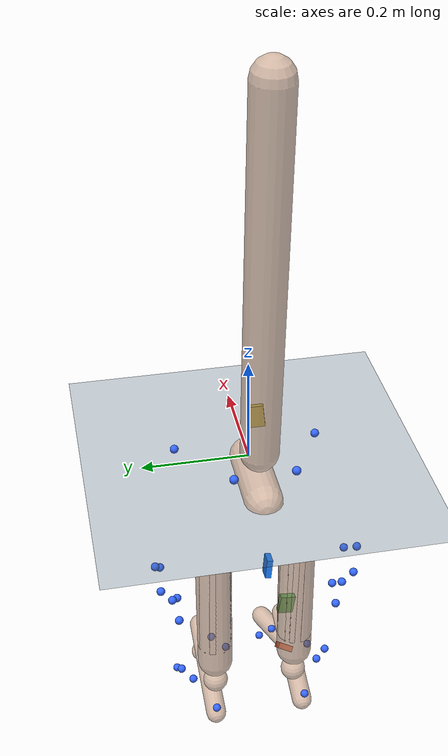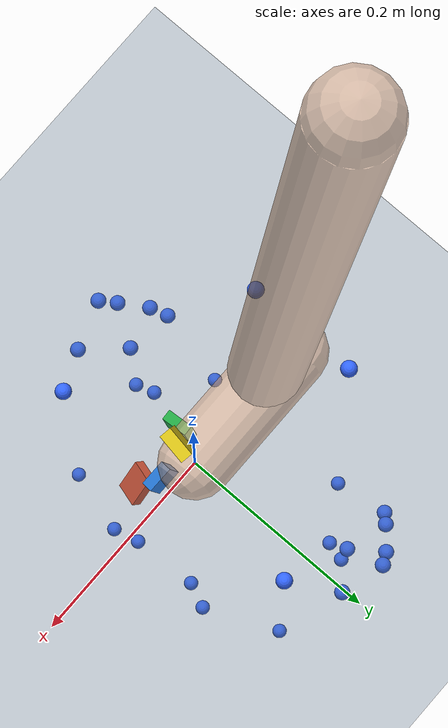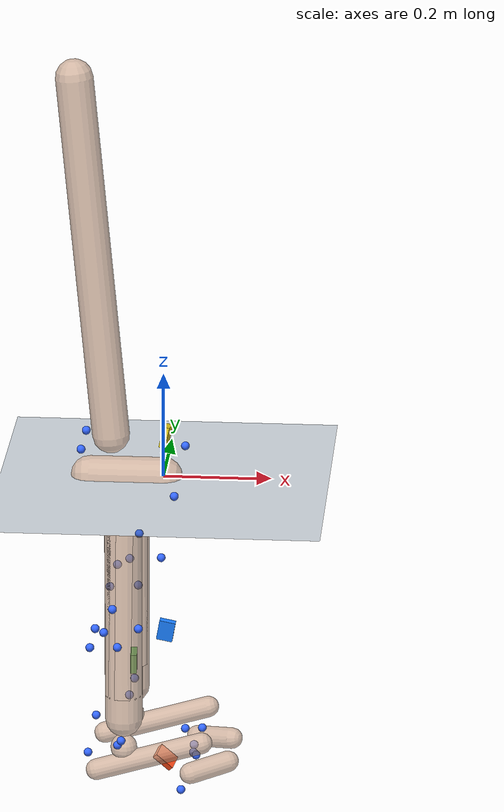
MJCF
<mujoco model="AB24">
  <compiler angle="radian" autolimits="true"/>
  <option timestep="0.005" gravity="0 0 -9.81"><flag contact="disable"/></option>
  <visual><global offwidth="1280" offheight="720"/></visual>
  <default><joint limited="false" damping="0"/><geom contype="0" conaffinity="0"/></default>
  <asset>
    <texture name="grid" type="2d" builtin="checker" rgb1="0.2 0.3 0.4" rgb2="0.3 0.4 0.5" width="512" height="512"/>
    <material name="grid" texture="grid" texrepeat="2 2" texuniform="true"/>
    <material name="skin" rgba="0.8 0.65 0.55 0.7"/>
  </asset>
  <worldbody>
    <light pos="0 0 4" dir="0 0 -1"/>
    <geom name="floor" type="plane" size="0 0 0.05" material="grid"/>
    <body name="pelvis" pos="0 0 0" quat="1 0 0 0">
      <joint name="pelvis_tx" type="slide" axis="1 0 0"/>
      <joint name="pelvis_ty" type="slide" axis="0 0 1"/>
      <joint name="pelvis_tz" type="slide" axis="0 -1 0"/>
      <joint name="pelvis_tilt" type="hinge" axis="0 -1 0"/>
      <joint name="pelvis_list" type="hinge" axis="1 0 0"/>
      <joint name="pelvis_rotation" type="hinge" axis="0 0 1"/>
      <inertial pos="-0.069074634 0 0" mass="11.6535" diaginertia="0.11653464 0.11653464 0.11653464"/>
      <geom type="capsule" fromto="0 0 0 -0.13814927 0 0" size="0.035" material="skin" mass="0"/>
      <site name="m_R_ASIS" pos="0.02979655 -0.13436663 0.010378045" size="0.008" rgba="0.2 0.4 1 1" group="2"/>
      <site name="m_L_ASIS" pos="0.029885228 0.13397565 0.011773508" size="0.008" rgba="0.2 0.4 1 1" group="2"/>
      <site name="m_L_PSIS" pos="-0.14942809 0.055495081 0.06618739" size="0.008" rgba="0.2 0.4 1 1" group="2"/>
      <site name="m_R_PSIS" pos="-0.14904759 -0.055161692 0.06874354" size="0.008" rgba="0.2 0.4 1 1" group="2"/>
      <body name="femur_r" pos="-0.069074634 -0.081580367 -0.064580386" quat="1 0 0 0">
        <joint name="hip_flexion_r" type="hinge" axis="0 -1 0"/>
        <joint name="hip_adduction_r" type="hinge" axis="1 0 0"/>
        <joint name="hip_rotation_r" type="hinge" axis="0 0 1"/>
        <inertial pos="0 0 -0.17074942" mass="9.20383" diaginertia="0.09203832 0.09203832 0.09203832"/>
        <geom type="capsule" fromto="0 0 0 0 0 -0.34149885" size="0.035" material="skin" mass="0"/>
        <site name="m_R_Thigh_Upper" pos="-0.010175944 -0.11612461 -0.12647962" size="0.008" rgba="0.2 0.4 1 1" group="2"/>
        <site name="m_R_Thigh_Front" pos="0.036712227 -0.10519196 -0.16798627" size="0.008" rgba="0.2 0.4 1 1" group="2"/>
        <site name="m_R_Thigh_Rear" pos="-0.027108658 -0.10754628 -0.1763228" size="0.008" rgba="0.2 0.4 1 1" group="2"/>
        <site name="m_R_Knee_Lat" pos="0.00076782742 -0.066768861 -0.40879409" size="0.008" rgba="0.2 0.4 1 1" group="2"/>
        <site name="imu_thigh" type="box" size="0.02 0.015 0.006" pos="0.076513948 0.039263842 -0.22633906" quat="0.51875675 0.5640452 -0.4941229 0.41059348" rgba="0.1 0.5 1 1" group="1"/>
        <body name="tibia_r" pos="0 0 0" quat="1 0 0 0">
          <joint name="knee_r_translation1" type="slide" axis="1 0 0"/>
          <joint name="knee_r_translation2" type="slide" axis="0 0 1"/>
          <joint name="knee_angle_r" type="hinge" axis="0 -1 0"/>
          <inertial pos="0 0 -0.19494833" mass="3.66861" diaginertia="0.036686098 0.036686098 0.036686098"/>
          <geom type="capsule" fromto="0 0 0 0 0 -0.38989667" size="0.035" material="skin" mass="0"/>
          <site name="m_R_Shank_Upper" pos="-0.045482859 -0.079605005 -0.18005249" size="0.008" rgba="0.2 0.4 1 1" group="2"/>
          <site name="m_R_Shank_Front" pos="-0.0052006751 -0.07275884 -0.21918412" size="0.008" rgba="0.2 0.4 1 1" group="2"/>
          <site name="m_R_Shank_Rear" pos="-0.056779726 -0.066262877 -0.2237682" size="0.008" rgba="0.2 0.4 1 1" group="2"/>
          <site name="m_R_Ankle_Lat" pos="-0.0075492554 -0.047736947 -0.42578722" size="0.008" rgba="0.2 0.4 1 1" group="2"/>
          <site name="imu_shank" type="box" size="0.02 0.015 0.006" pos="0.017960822 0.014036736 -0.27928329" quat="0.69849762 0.035630604 0.71079998 0.074799175" rgba="0.1 0.8 0.2 1" group="1"/>
          <body name="talus_r" pos="0 0 -0.44899723" quat="1 0 0 0">
            <joint name="ankle_angle_r" type="hinge" axis="-0.10501355 -0.97912632 -0.17402245"/>
            <inertial pos="0 0 0" mass="0.098951" diaginertia="0.0009895104 0.0009895104 0.0009895104"/>
            <geom type="sphere" size="0.025" material="skin" mass="0"/>
            <body name="calcn_r" pos="-0.05092464 -0.0082699025 -0.043803335" quat="1 0 0 0">
              <joint name="subtalar_angle_r" type="hinge" axis="0.78717961 0.12094949 0.60474746"/>
              <inertial pos="0.098789862 0 0.029636959" mass="1.23689" diaginertia="0.01236888 0.01236888 0.01236888"/>
              <geom type="capsule" fromto="0 0 0 0.19757972 0 0.059273917" size="0.02" material="skin" mass="0"/>
              <site name="m_R_Heel" pos="-0.015684659 -0.00088155395 0.034654661" size="0.008" rgba="0.2 0.4 1 1" group="2"/>
              <site name="m_R_Toe_Lat" pos="0.16296418 -0.052206618 -0.013697677" size="0.008" rgba="0.2 0.4 1 1" group="2"/>
              <site name="m_R_Toe_Med" pos="0.17860874 0.052244459 0.01808688" size="0.008" rgba="0.2 0.4 1 1" group="2"/>
              <site name="m_R_Toe_Tip" pos="0.18580954 0.023376589 0.025044796" size="0.008" rgba="0.2 0.4 1 1" group="2"/>
              <site name="imu_foot" type="box" size="0.02 0.015 0.006" pos="0.12925411 0.0091666259 0.024459291" quat="0.91021678 0.21387907 0.34768335 -0.069838743" rgba="1 0.3 0.1 1" group="1"/>
              <body name="toes_r" pos="0.17663627 -0.0010669305 -0.0019757972" quat="1 0 0 0">
                <joint name="mtp_angle_r" type="hinge" axis="-0.5809544 -0.81393611 0"/>
                <inertial pos="0.034181292 0.017288226 0.0059273917" mass="0.214328" diaginertia="0.0021432795 0.0021432795 0.0021432795"/>
                <geom type="capsule" fromto="0 0 0 0.068362584 0.034576452 0.011854783" size="0.02" material="skin" mass="0"/>
              </body>
            </body>
          </body>
        </body>
      </body>
      <body name="femur_l" pos="-0.069074634 0.081580367 -0.064580386" quat="1 0 0 0">
        <joint name="hip_flexion_l" type="hinge" axis="0 -1 0"/>
        <joint name="hip_adduction_l" type="hinge" axis="-1 0 0"/>
        <joint name="hip_rotation_l" type="hinge" axis="0 0 -1"/>
        <inertial pos="0 0 -0.17074942" mass="9.20383" diaginertia="0.09203832 0.09203832 0.09203832"/>
        <geom type="capsule" fromto="0 0 0 0 0 -0.34149885" size="0.035" material="skin" mass="0"/>
        <site name="m_L_Thigh_Upper" pos="0.0068246174 0.10979618 -0.12457042" size="0.008" rgba="0.2 0.4 1 1" group="2"/>
        <site name="m_L_Thigh_Front" pos="0.04975698 0.096138014 -0.16731496" size="0.008" rgba="0.2 0.4 1 1" group="2"/>
        <site name="m_L_Thigh_Rear" pos="-0.010858434 0.10333969 -0.17333694" size="0.008" rgba="0.2 0.4 1 1" group="2"/>
        <site name="m_L_Knee_Lat" pos="0.0007314402 0.068760134 -0.40484086" size="0.008" rgba="0.2 0.4 1 1" group="2"/>
        <body name="tibia_l" pos="0 0 0" quat="1 0 0 0">
          <joint name="knee_l_translation1" type="slide" axis="1 0 0"/>
          <joint name="knee_l_translation2" type="slide" axis="0 0 1"/>
          <joint name="knee_angle_l" type="hinge" axis="0 -1 0"/>
          <inertial pos="0 0 -0.19494833" mass="3.66861" diaginertia="0.036686098 0.036686098 0.036686098"/>
          <geom type="capsule" fromto="0 0 0 0 0 -0.38989667" size="0.035" material="skin" mass="0"/>
          <site name="m_L_Shank_Upper" pos="-0.032731005 0.084769261 -0.17898674" size="0.008" rgba="0.2 0.4 1 1" group="2"/>
          <site name="m_L_Shank_Front" pos="0.0080263434 0.07066084 -0.21444658" size="0.008" rgba="0.2 0.4 1 1" group="2"/>
          <site name="m_L_Shank_Rear" pos="-0.046453205 0.075241744 -0.22064672" size="0.008" rgba="0.2 0.4 1 1" group="2"/>
          <site name="m_L_Ankle_Lat" pos="-0.0075065159 0.046632122 -0.43042986" size="0.008" rgba="0.2 0.4 1 1" group="2"/>
          <body name="talus_l" pos="0 0 -0.44899723" quat="1 0 0 0">
            <joint name="ankle_angle_l" type="hinge" axis="0.10501355 -0.97912632 0.17402245"/>
            <inertial pos="0 0 0" mass="0.098951" diaginertia="0.0009895104 0.0009895104 0.0009895104"/>
            <geom type="sphere" size="0.025" material="skin" mass="0"/>
            <body name="calcn_l" pos="-0.05092464 0.0082699025 -0.043803335" quat="1 0 0 0">
              <joint name="subtalar_angle_l" type="hinge" axis="-0.78717961 0.12094949 -0.60474746"/>
              <inertial pos="0.098789862 0 0.029636959" mass="1.23689" diaginertia="0.01236888 0.01236888 0.01236888"/>
              <geom type="capsule" fromto="0 0 0 0.19757972 0 0.059273917" size="0.02" material="skin" mass="0"/>
              <site name="m_L_Heel" pos="-0.016842603 0.0011772295 0.034253687" size="0.008" rgba="0.2 0.4 1 1" group="2"/>
              <site name="m_L_Toe_Lat" pos="0.14902031 0.058103447 -0.011782619" size="0.008" rgba="0.2 0.4 1 1" group="2"/>
              <site name="m_L_Toe_Med" pos="0.17417614 -0.0525961 0.0021185412" size="0.008" rgba="0.2 0.4 1 1" group="2"/>
              <site name="m_L_Toe_Tip" pos="0.18768303 -0.02346316 0.025059048" size="0.008" rgba="0.2 0.4 1 1" group="2"/>
              <body name="toes_l" pos="0.17663627 0.0010669305 -0.0019757972" quat="1 0 0 0">
                <joint name="mtp_angle_l" type="hinge" axis="0.5809544 -0.81393611 0"/>
                <inertial pos="0.034181292 -0.017288226 0.0059273917" mass="0.214328" diaginertia="0.0021432795 0.0021432795 0.0021432795"/>
                <geom type="capsule" fromto="0 0 0 0.068362584 -0.034576452 0.011854783" size="0.02" material="skin" mass="0"/>
              </body>
            </body>
          </body>
        </body>
      </body>
      <body name="torso" pos="-0.098384945 0 0.079626346" quat="1 0 0 0">
        <joint name="lumbar_extension" type="hinge" axis="0 -1 0"/>
        <joint name="lumbar_bending" type="hinge" axis="1 0 0"/>
        <joint name="lumbar_rotation" type="hinge" axis="0 0 1"/>
        <inertial pos="-0.032194043 0 0.34340313" mass="33.8775" diaginertia="0.33877472 0.33877472 0.33877472"/>
        <geom type="capsule" fromto="0 0 0 -0.064388086 0 0.68680625" size="0.035" material="skin" mass="0"/>
        <site name="imu_trunk" type="box" size="0.02 0.015 0.006" pos="0.10324827 -0.014964698 0.0048705765" quat="0.62847657 0.028184759 0.77189984 -0.091615823" rgba="0.9 0.8 0.1 1" group="1"/>
      </body>
    </body>
  </worldbody>
  <sensor>
<accelerometer name="imu_foot_acc" site="imu_foot"/>
<gyro name="imu_foot_gyr" site="imu_foot"/>
<accelerometer name="imu_shank_acc" site="imu_shank"/>
<gyro name="imu_shank_gyr" site="imu_shank"/>
<accelerometer name="imu_thigh_acc" site="imu_thigh"/>
<gyro name="imu_thigh_gyr" site="imu_thigh"/>
<accelerometer name="imu_trunk_acc" site="imu_trunk"/>
<gyro name="imu_trunk_gyr" site="imu_trunk"/>
</sensor>
</mujoco>
